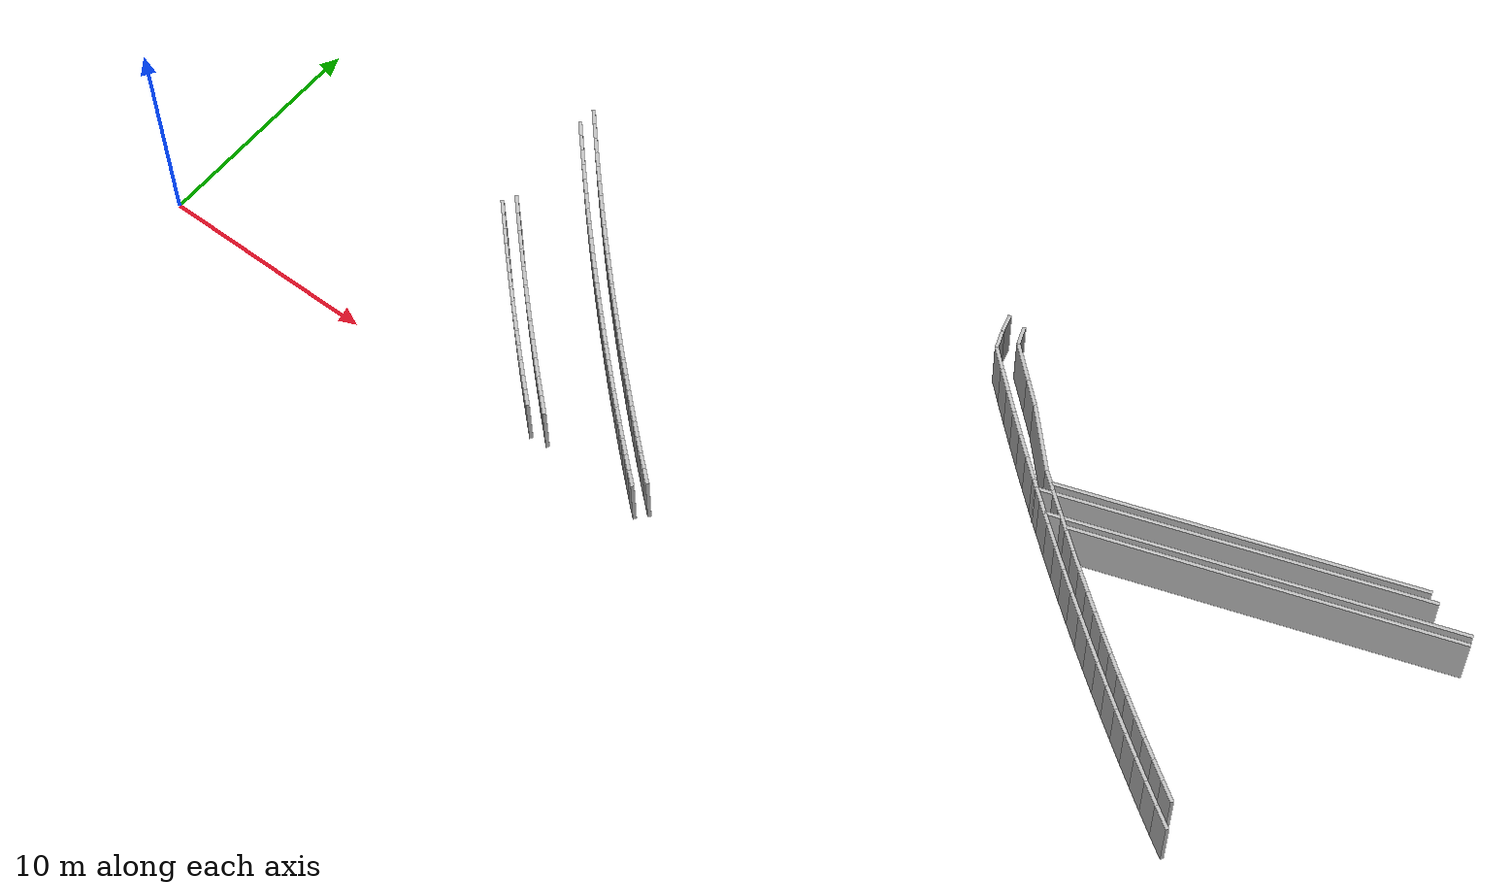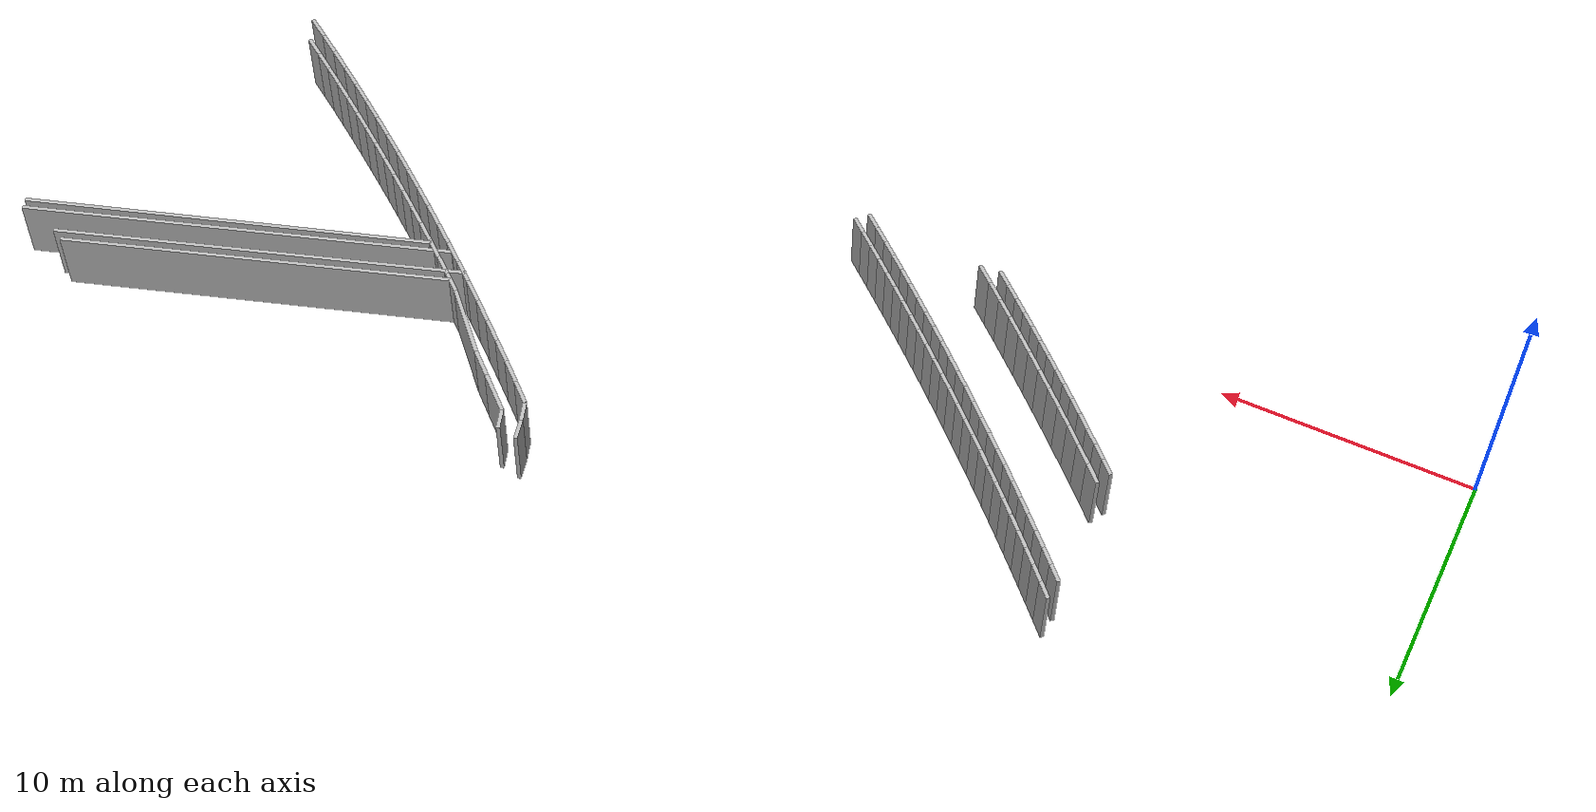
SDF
<sdf version="1.6">
 <model name="sps_0201">
  <static>1</static>
  <allow_auto_disable>0</allow_auto_disable>
  <link name="Wall1785">
   <collision name="collision"><geometry><box><size>3.11157 0.15 2.5</size></box></geometry></collision>
   <visual name="visual">
    <geometry><box><size>3.11157 0.15 2.5</size></box></geometry>
    <transparency>0.0</transparency>
   </visual>
   <pose>36.4737 11.5634 1.25 0 0 -0.795454</pose>
  </link>
  <link name="Wall2507">
   <collision name="collision"><geometry><box><size>1.78191 0.15 2.5</size></box></geometry></collision>
   <visual name="visual">
    <geometry><box><size>1.78191 0.15 2.5</size></box></geometry>
    <transparency>0.0</transparency>
   </visual>
   <pose>33.8 14.0663 1.25 0 0 -0.720717</pose>
  </link>
  <link name="Wall2508">
   <collision name="collision"><geometry><box><size>1.21813 0.15 2.5</size></box></geometry></collision>
   <visual name="visual">
    <geometry><box><size>1.21813 0.15 2.5</size></box></geometry>
    <transparency>0.0</transparency>
   </visual>
   <pose>34.9271 13.0765 1.25 0 0 -0.720717</pose>
  </link>
  <link name="Wall6502">
   <collision name="collision"><geometry><box><size>0.733 0.15 2.5</size></box></geometry></collision>
   <visual name="visual">
    <geometry><box><size>0.733 0.15 2.5</size></box></geometry>
    <transparency>0.0</transparency>
   </visual>
   <pose>12.1887 7.03181 1.25 0 0 -0.796055</pose>
  </link>
  <link name="Wall6503">
   <collision name="collision"><geometry><box><size>0.733276 0.15 2.5</size></box></geometry></collision>
   <visual name="visual">
    <geometry><box><size>0.733276 0.15 2.5</size></box></geometry>
    <transparency>0.0</transparency>
   </visual>
   <pose>12.7026 6.50902 1.25 0 0 -0.791755</pose>
  </link>
  <link name="Wall6504">
   <collision name="collision"><geometry><box><size>0.733046 0.15 2.5</size></box></geometry></collision>
   <visual name="visual">
    <geometry><box><size>0.733046 0.15 2.5</size></box></geometry>
    <transparency>0.0</transparency>
   </visual>
   <pose>13.219 5.98851 1.25 0 0 -0.787106</pose>
  </link>
  <link name="Wall6505">
   <collision name="collision"><geometry><box><size>0.733134 0.15 2.5</size></box></geometry></collision>
   <visual name="visual">
    <geometry><box><size>0.733134 0.15 2.5</size></box></geometry>
    <transparency>0.0</transparency>
   </visual>
   <pose>13.7376 5.47038 1.25 0 0 -0.782749</pose>
  </link>
  <link name="Wall6506">
   <collision name="collision"><geometry><box><size>0.733151 0.15 2.5</size></box></geometry></collision>
   <visual name="visual">
    <geometry><box><size>0.733151 0.15 2.5</size></box></geometry>
    <transparency>0.0</transparency>
   </visual>
   <pose>14.2586 4.95457 1.25 0 0 -0.77804</pose>
  </link>
  <link name="Wall6507">
   <collision name="collision"><geometry><box><size>0.733009 0.15 2.5</size></box></geometry></collision>
   <visual name="visual">
    <geometry><box><size>0.733009 0.15 2.5</size></box></geometry>
    <transparency>0.0</transparency>
   </visual>
   <pose>14.7819 4.44118 1.25 0 0 -0.773681</pose>
  </link>
  <link name="Wall6508">
   <collision name="collision"><geometry><box><size>0.733233 0.15 2.5</size></box></geometry></collision>
   <visual name="visual">
    <geometry><box><size>0.733233 0.15 2.5</size></box></geometry>
    <transparency>0.0</transparency>
   </visual>
   <pose>15.3075 3.93019 1.25 0 0 -0.76874</pose>
  </link>
  <link name="Wall6509">
   <collision name="collision"><geometry><box><size>0.73329 0.15 2.5</size></box></geometry></collision>
   <visual name="visual">
    <geometry><box><size>0.73329 0.15 2.5</size></box></geometry>
    <transparency>0.0</transparency>
   </visual>
   <pose>15.8357 3.42149 1.25 0 0 -0.764621</pose>
  </link>
  <link name="Wall6510">
   <collision name="collision"><geometry><box><size>0.733111 0.15 2.5</size></box></geometry></collision>
   <visual name="visual">
    <geometry><box><size>0.733111 0.15 2.5</size></box></geometry>
    <transparency>0.0</transparency>
   </visual>
   <pose>16.366 2.91518 1.25 0 0 -0.759905</pose>
  </link>
  <link name="Wall6511">
   <collision name="collision"><geometry><box><size>0.733118 0.15 2.5</size></box></geometry></collision>
   <visual name="visual">
    <geometry><box><size>0.733118 0.15 2.5</size></box></geometry>
    <transparency>0.0</transparency>
   </visual>
   <pose>16.8986 2.41139 1.25 0 0 -0.755311</pose>
  </link>
  <link name="Wall6512">
   <collision name="collision"><geometry><box><size>0.733179 0.15 2.5</size></box></geometry></collision>
   <visual name="visual">
    <geometry><box><size>0.733179 0.15 2.5</size></box></geometry>
    <transparency>0.0</transparency>
   </visual>
   <pose>17.4334 1.90999 1.25 0 0 -0.750897</pose>
  </link>
  <link name="Wall6513">
   <collision name="collision"><geometry><box><size>0.732961 0.15 2.5</size></box></geometry></collision>
   <visual name="visual">
    <geometry><box><size>0.732961 0.15 2.5</size></box></geometry>
    <transparency>0.0</transparency>
   </visual>
   <pose>17.9705 1.41109 1.25 0 0 -0.746173</pose>
  </link>
  <link name="Wall6514">
   <collision name="collision"><geometry><box><size>0.733142 0.15 2.5</size></box></geometry></collision>
   <visual name="visual">
    <geometry><box><size>0.733142 0.15 2.5</size></box></geometry>
    <transparency>0.0</transparency>
   </visual>
   <pose>18.5099 0.914687 1.25 0 0 -0.741646</pose>
  </link>
  <link name="Wall6515">
   <collision name="collision"><geometry><box><size>0.732985 0.15 2.5</size></box></geometry></collision>
   <visual name="visual">
    <geometry><box><size>0.732985 0.15 2.5</size></box></geometry>
    <transparency>0.0</transparency>
   </visual>
   <pose>19.0515 0.420669 1.25 0 0 -0.737333</pose>
  </link>
  <link name="Wall6563">
   <collision name="collision"><geometry><box><size>17.1673 0.15 2.5</size></box></geometry></collision>
   <visual name="visual">
    <geometry><box><size>17.1673 0.15 2.5</size></box></geometry>
    <transparency>0.0</transparency>
   </visual>
   <pose>46.8191 11.6091 1.25 0 0 -2.81138</pose>
  </link>
  <link name="Wall6564">
   <collision name="collision"><geometry><box><size>0.0600473 0.15 2.5</size></box></geometry></collision>
   <visual name="visual">
    <geometry><box><size>0.0600473 0.15 2.5</size></box></geometry>
    <transparency>0.0</transparency>
   </visual>
   <pose>38.6713 8.81477 1.25 0 0 -2.7626</pose>
  </link>
  <link name="Wall9124">
   <collision name="collision"><geometry><box><size>15.4451 0.15 2.5</size></box></geometry></collision>
   <visual name="visual">
    <geometry><box><size>15.4451 0.15 2.5</size></box></geometry>
    <transparency>0.0</transparency>
   </visual>
   <pose>45.3364 12.5762 1.25 0 0 -2.81082</pose>
  </link>
  <link name="Wall9125">
   <collision name="collision"><geometry><box><size>0.950824 0.15 2.5</size></box></geometry></collision>
   <visual name="visual">
    <geometry><box><size>0.950824 0.15 2.5</size></box></geometry>
    <transparency>0.0</transparency>
   </visual>
   <pose>37.931 10.1517 1.25 0 0 -0.684506</pose>
  </link>
  <link name="Wall9126">
   <collision name="collision"><geometry><box><size>0.950754 0.15 2.5</size></box></geometry></collision>
   <visual name="visual">
    <geometry><box><size>0.950754 0.15 2.5</size></box></geometry>
    <transparency>0.0</transparency>
   </visual>
   <pose>38.6696 9.55299 1.25 0 0 -0.677789</pose>
  </link>
  <link name="Wall9127">
   <collision name="collision"><geometry><box><size>0.950728 0.15 2.5</size></box></geometry></collision>
   <visual name="visual">
    <geometry><box><size>0.950728 0.15 2.5</size></box></geometry>
    <transparency>0.0</transparency>
   </visual>
   <pose>39.4122 8.9593 1.25 0 0 -0.671071</pose>
  </link>
  <link name="Wall9128">
   <collision name="collision"><geometry><box><size>0.950911 0.15 2.5</size></box></geometry></collision>
   <visual name="visual">
    <geometry><box><size>0.950911 0.15 2.5</size></box></geometry>
    <transparency>0.0</transparency>
   </visual>
   <pose>40.1587 8.37041 1.25 0 0 -0.664787</pose>
  </link>
  <link name="Wall9129">
   <collision name="collision"><geometry><box><size>0.950856 0.15 2.5</size></box></geometry></collision>
   <visual name="visual">
    <geometry><box><size>0.950856 0.15 2.5</size></box></geometry>
    <transparency>0.0</transparency>
   </visual>
   <pose>40.909 7.78639 1.25 0 0 -0.657919</pose>
  </link>
  <link name="Wall9130">
   <collision name="collision"><geometry><box><size>0.95097 0.15 2.5</size></box></geometry></collision>
   <visual name="visual">
    <geometry><box><size>0.95097 0.15 2.5</size></box></geometry>
    <transparency>0.0</transparency>
   </visual>
   <pose>41.6634 7.20738 1.25 0 0 -0.651434</pose>
  </link>
  <link name="Wall9131">
   <collision name="collision"><geometry><box><size>0.950855 0.15 2.5</size></box></geometry></collision>
   <visual name="visual">
    <geometry><box><size>0.950855 0.15 2.5</size></box></geometry>
    <transparency>0.0</transparency>
   </visual>
   <pose>42.4216 6.6335 1.25 0 0 -0.644361</pose>
  </link>
  <link name="Wall9132">
   <collision name="collision"><geometry><box><size>0.950675 0.15 2.5</size></box></geometry></collision>
   <visual name="visual">
    <geometry><box><size>0.950675 0.15 2.5</size></box></geometry>
    <transparency>0.0</transparency>
   </visual>
   <pose>43.1836 6.06489 1.25 0 0 -0.637774</pose>
  </link>
  <link name="Wall9133">
   <collision name="collision"><geometry><box><size>0.950828 0.15 2.5</size></box></geometry></collision>
   <visual name="visual">
    <geometry><box><size>0.950828 0.15 2.5</size></box></geometry>
    <transparency>0.0</transparency>
   </visual>
   <pose>43.9492 5.5013 1.25 0 0 -0.631279</pose>
  </link>
  <link name="Wall9134">
   <collision name="collision"><geometry><box><size>0.950821 0.15 2.5</size></box></geometry></collision>
   <visual name="visual">
    <geometry><box><size>0.950821 0.15 2.5</size></box></geometry>
    <transparency>0.0</transparency>
   </visual>
   <pose>44.7187 4.94279 1.25 0 0 -0.624384</pose>
  </link>
  <link name="Wall9135">
   <collision name="collision"><geometry><box><size>0.950844 0.15 2.5</size></box></geometry></collision>
   <visual name="visual">
    <geometry><box><size>0.950844 0.15 2.5</size></box></geometry>
    <transparency>0.0</transparency>
   </visual>
   <pose>45.4921 4.38957 1.25 0 0 -0.617578</pose>
  </link>
  <link name="Wall9136">
   <collision name="collision"><geometry><box><size>0.950702 0.15 2.5</size></box></geometry></collision>
   <visual name="visual">
    <geometry><box><size>0.950702 0.15 2.5</size></box></geometry>
    <transparency>0.0</transparency>
   </visual>
   <pose>46.2689 3.84148 1.25 0 0 -0.611241</pose>
  </link>
  <link name="Wall9137">
   <collision name="collision"><geometry><box><size>0.950757 0.15 2.5</size></box></geometry></collision>
   <visual name="visual">
    <geometry><box><size>0.950757 0.15 2.5</size></box></geometry>
    <transparency>0.0</transparency>
   </visual>
   <pose>47.0494 3.2986 1.25 0 0 -0.604241</pose>
  </link>
  <link name="Wall9138">
   <collision name="collision"><geometry><box><size>0.95098 0.15 2.5</size></box></geometry></collision>
   <visual name="visual">
    <geometry><box><size>0.95098 0.15 2.5</size></box></geometry>
    <transparency>0.0</transparency>
   </visual>
   <pose>47.8337 2.761 1.25 0 0 -0.597544</pose>
  </link>
  <link name="Wall9139">
   <collision name="collision"><geometry><box><size>0.950873 0.15 2.5</size></box></geometry></collision>
   <visual name="visual">
    <geometry><box><size>0.950873 0.15 2.5</size></box></geometry>
    <transparency>0.0</transparency>
   </visual>
   <pose>48.6216 2.22859 1.25 0 0 -0.590958</pose>
  </link>
  <link name="Wall9140">
   <collision name="collision"><geometry><box><size>0.95074 0.15 2.5</size></box></geometry></collision>
   <visual name="visual">
    <geometry><box><size>0.95074 0.15 2.5</size></box></geometry>
    <transparency>0.0</transparency>
   </visual>
   <pose>49.413 1.70149 1.25 0 0 -0.584264</pose>
  </link>
  <link name="Wall12799">
   <collision name="collision"><geometry><box><size>0.836208 0.15 2.5</size></box></geometry></collision>
   <visual name="visual">
    <geometry><box><size>0.836208 0.15 2.5</size></box></geometry>
    <transparency>0.0</transparency>
   </visual>
   <pose>32.3967 14.3728 1.25 0 -0 1.91127</pose>
  </link>
  <link name="Wall12800">
   <collision name="collision"><geometry><box><size>0.836249 0.15 2.5</size></box></geometry></collision>
   <visual name="visual">
    <geometry><box><size>0.836249 0.15 2.5</size></box></geometry>
    <transparency>0.0</transparency>
   </visual>
   <pose>32.1507 15.1713 1.25 0 -0 1.82783</pose>
  </link>
  <link name="Wall12810">
   <collision name="collision"><geometry><box><size>16.3023 0.15 2.5</size></box></geometry></collision>
   <visual name="visual">
    <geometry><box><size>16.3023 0.15 2.5</size></box></geometry>
    <transparency>0.0</transparency>
   </visual>
   <pose>45.4235 12.1714 1.25 0 0 -2.80949</pose>
  </link>
  <link name="Wall12811">
   <collision name="collision"><geometry><box><size>0.0551311 0.15 2.5</size></box></geometry></collision>
   <visual name="visual">
    <geometry><box><size>0.0551311 0.15 2.5</size></box></geometry>
    <transparency>0.0</transparency>
   </visual>
   <pose>37.692 9.50389 1.25 0 0 -2.77116</pose>
  </link>
  <link name="Wall12813">
   <collision name="collision"><geometry><box><size>16.2238 0.15 2.5</size></box></geometry></collision>
   <visual name="visual">
    <geometry><box><size>16.2238 0.15 2.5</size></box></geometry>
    <transparency>0.0</transparency>
   </visual>
   <pose>47.3884 11.4041 1.25 0 0 -2.81404</pose>
  </link>
  <link name="Wall12814">
   <collision name="collision"><geometry><box><size>0.0651843 0.15 2.5</size></box></geometry></collision>
   <visual name="visual">
    <geometry><box><size>0.0651843 0.15 2.5</size></box></geometry>
    <transparency>0.0</transparency>
   </visual>
   <pose>39.6771 8.78358 1.25 0 0 -2.8077</pose>
  </link>
  <link name="Wall19003">
   <collision name="collision"><geometry><box><size>1.06687 0.15 2.5</size></box></geometry></collision>
   <visual name="visual">
    <geometry><box><size>1.06687 0.15 2.5</size></box></geometry>
    <transparency>0.0</transparency>
   </visual>
   <pose>32.9348 13.6241 1.25 0 0 -0.727193</pose>
  </link>
  <link name="Wall19004">
   <collision name="collision"><geometry><box><size>1.06664 0.15 2.5</size></box></geometry></collision>
   <visual name="visual">
    <geometry><box><size>1.06664 0.15 2.5</size></box></geometry>
    <transparency>0.0</transparency>
   </visual>
   <pose>33.7344 12.918 1.25 0 0 -0.7196</pose>
  </link>
  <link name="Wall19005">
   <collision name="collision"><geometry><box><size>1.06677 0.15 2.5</size></box></geometry></collision>
   <visual name="visual">
    <geometry><box><size>1.06677 0.15 2.5</size></box></geometry>
    <transparency>0.0</transparency>
   </visual>
   <pose>34.5393 12.218 1.25 0 0 -0.711984</pose>
  </link>
  <link name="Wall19006">
   <collision name="collision"><geometry><box><size>1.06691 0.15 2.5</size></box></geometry></collision>
   <visual name="visual">
    <geometry><box><size>1.06691 0.15 2.5</size></box></geometry>
    <transparency>0.0</transparency>
   </visual>
   <pose>35.3494 11.5238 1.25 0 0 -0.705015</pose>
  </link>
  <link name="Wall19007">
   <collision name="collision"><geometry><box><size>1.0668 0.15 2.5</size></box></geometry></collision>
   <visual name="visual">
    <geometry><box><size>1.0668 0.15 2.5</size></box></geometry>
    <transparency>0.0</transparency>
   </visual>
   <pose>36.1645 10.8355 1.25 0 0 -0.697537</pose>
  </link>
  <link name="Wall19008">
   <collision name="collision"><geometry><box><size>1.06666 0.15 2.5</size></box></geometry></collision>
   <visual name="visual">
    <geometry><box><size>1.06666 0.15 2.5</size></box></geometry>
    <transparency>0.0</transparency>
   </visual>
   <pose>36.9847 10.1535 1.25 0 0 -0.689764</pose>
  </link>
  <link name="Wall19009">
   <collision name="collision"><geometry><box><size>1.06669 0.15 2.5</size></box></geometry></collision>
   <visual name="visual">
    <geometry><box><size>1.06669 0.15 2.5</size></box></geometry>
    <transparency>0.0</transparency>
   </visual>
   <pose>37.81 9.47771 1.25 0 0 -0.682489</pose>
  </link>
  <link name="Wall19010">
   <collision name="collision"><geometry><box><size>1.06676 0.15 2.5</size></box></geometry></collision>
   <visual name="visual">
    <geometry><box><size>1.06676 0.15 2.5</size></box></geometry>
    <transparency>0.0</transparency>
   </visual>
   <pose>38.6403 8.808 1.25 0 0 -0.675009</pose>
  </link>
  <link name="Wall19011">
   <collision name="collision"><geometry><box><size>1.06665 0.15 2.5</size></box></geometry></collision>
   <visual name="visual">
    <geometry><box><size>1.06665 0.15 2.5</size></box></geometry>
    <transparency>0.0</transparency>
   </visual>
   <pose>39.4755 8.14458 1.25 0 0 -0.667422</pose>
  </link>
  <link name="Wall19012">
   <collision name="collision"><geometry><box><size>1.06681 0.15 2.5</size></box></geometry></collision>
   <visual name="visual">
    <geometry><box><size>1.06681 0.15 2.5</size></box></geometry>
    <transparency>0.0</transparency>
   </visual>
   <pose>40.3158 7.48747 1.25 0 0 -0.659899</pose>
  </link>
  <link name="Wall19013">
   <collision name="collision"><geometry><box><size>1.06678 0.15 2.5</size></box></geometry></collision>
   <visual name="visual">
    <geometry><box><size>1.06678 0.15 2.5</size></box></geometry>
    <transparency>0.0</transparency>
   </visual>
   <pose>41.1611 6.83659 1.25 0 0 -0.652553</pose>
  </link>
  <link name="Wall19014">
   <collision name="collision"><geometry><box><size>1.06668 0.15 2.5</size></box></geometry></collision>
   <visual name="visual">
    <geometry><box><size>1.06668 0.15 2.5</size></box></geometry>
    <transparency>0.0</transparency>
   </visual>
   <pose>42.0111 6.19209 1.25 0 0 -0.644943</pose>
  </link>
  <link name="Wall19015">
   <collision name="collision"><geometry><box><size>1.06702 0.15 2.5</size></box></geometry></collision>
   <visual name="visual">
    <geometry><box><size>1.06702 0.15 2.5</size></box></geometry>
    <transparency>0.0</transparency>
   </visual>
   <pose>42.866 5.55388 1.25 0 0 -0.637632</pose>
  </link>
  <link name="Wall19016">
   <collision name="collision"><geometry><box><size>1.06675 0.15 2.5</size></box></geometry></collision>
   <visual name="visual">
    <geometry><box><size>1.06675 0.15 2.5</size></box></geometry>
    <transparency>0.0</transparency>
   </visual>
   <pose>43.7256 4.92207 1.25 0 0 -0.62994</pose>
  </link>
  <link name="Wall19017">
   <collision name="collision"><geometry><box><size>1.06672 0.15 2.5</size></box></geometry></collision>
   <visual name="visual">
    <geometry><box><size>1.06672 0.15 2.5</size></box></geometry>
    <transparency>0.0</transparency>
   </visual>
   <pose>44.59 4.29689 1.25 0 0 -0.622478</pose>
  </link>
  <link name="Wall19018">
   <collision name="collision"><geometry><box><size>1.06671 0.15 2.5</size></box></geometry></collision>
   <visual name="visual">
    <geometry><box><size>1.06671 0.15 2.5</size></box></geometry>
    <transparency>0.0</transparency>
   </visual>
   <pose>45.4589 3.67811 1.25 0 0 -0.615174</pose>
  </link>
  <link name="Wall19019">
   <collision name="collision"><geometry><box><size>1.06693 0.15 2.5</size></box></geometry></collision>
   <visual name="visual">
    <geometry><box><size>1.06693 0.15 2.5</size></box></geometry>
    <transparency>0.0</transparency>
   </visual>
   <pose>46.3325 3.06581 1.25 0 0 -0.607488</pose>
  </link>
  <link name="Wall19020">
   <collision name="collision"><geometry><box><size>1.06665 0.15 2.5</size></box></geometry></collision>
   <visual name="visual">
    <geometry><box><size>1.06665 0.15 2.5</size></box></geometry>
    <transparency>0.0</transparency>
   </visual>
   <pose>47.2107 2.46019 1.25 0 0 -0.599953</pose>
  </link>
  <link name="Wall19021">
   <collision name="collision"><geometry><box><size>1.0667 0.15 2.5</size></box></geometry></collision>
   <visual name="visual">
    <geometry><box><size>1.0667 0.15 2.5</size></box></geometry>
    <transparency>0.0</transparency>
   </visual>
   <pose>48.0933 1.86119 1.25 0 0 -0.592589</pose>
  </link>
  <link name="Wall19022">
   <collision name="collision"><geometry><box><size>1.06688 0.15 2.5</size></box></geometry></collision>
   <visual name="visual">
    <geometry><box><size>1.06688 0.15 2.5</size></box></geometry>
    <transparency>0.0</transparency>
   </visual>
   <pose>48.9804 1.26869 1.25 0 0 -0.585115</pose>
  </link>
  <link name="Wall19023">
   <collision name="collision"><geometry><box><size>1.06667 0.15 2.5</size></box></geometry></collision>
   <visual name="visual">
    <geometry><box><size>1.06667 0.15 2.5</size></box></geometry>
    <transparency>0.0</transparency>
   </visual>
   <pose>49.872 0.682998 1.25 0 0 -0.577306</pose>
  </link>
  <link name="Wall20979">
   <collision name="collision"><geometry><box><size>0.835599 0.15 2.5</size></box></geometry></collision>
   <visual name="visual">
    <geometry><box><size>0.835599 0.15 2.5</size></box></geometry>
    <transparency>0.0</transparency>
   </visual>
   <pose>32.9919 15.0484 1.25 0 -0 1.9092</pose>
  </link>
  <link name="Wall24524">
   <collision name="collision"><geometry><box><size>0.913764 0.15 2.5</size></box></geometry></collision>
   <visual name="visual">
    <geometry><box><size>0.913764 0.15 2.5</size></box></geometry>
    <transparency>0.0</transparency>
   </visual>
   <pose>12.5446 7.5266 1.25 0 0 -0.796687</pose>
  </link>
  <link name="Wall24525">
   <collision name="collision"><geometry><box><size>0.913894 0.15 2.5</size></box></geometry></collision>
   <visual name="visual">
    <geometry><box><size>0.913894 0.15 2.5</size></box></geometry>
    <transparency>0.0</transparency>
   </visual>
   <pose>13.1852 6.87489 1.25 0 0 -0.791301</pose>
  </link>
  <link name="Wall24526">
   <collision name="collision"><geometry><box><size>0.913576 0.15 2.5</size></box></geometry></collision>
   <visual name="visual">
    <geometry><box><size>0.913576 0.15 2.5</size></box></geometry>
    <transparency>0.0</transparency>
   </visual>
   <pose>13.8294 6.22688 1.25 0 0 -0.785398</pose>
  </link>
  <link name="Wall24527">
   <collision name="collision"><geometry><box><size>0.913763 0.15 2.5</size></box></geometry></collision>
   <visual name="visual">
    <geometry><box><size>0.913763 0.15 2.5</size></box></geometry>
    <transparency>0.0</transparency>
   </visual>
   <pose>14.4773 5.58259 1.25 0 0 -0.779919</pose>
  </link>
  <link name="Wall24528">
   <collision name="collision"><geometry><box><size>0.913764 0.15 2.5</size></box></geometry></collision>
   <visual name="visual">
    <geometry><box><size>0.913764 0.15 2.5</size></box></geometry>
    <transparency>0.0</transparency>
   </visual>
   <pose>15.1288 4.94191 1.25 0 0 -0.77411</pose>
  </link>
  <link name="Wall24529">
   <collision name="collision"><geometry><box><size>0.913704 0.15 2.5</size></box></geometry></collision>
   <visual name="visual">
    <geometry><box><size>0.913704 0.15 2.5</size></box></geometry>
    <transparency>0.0</transparency>
   </visual>
   <pose>15.7839 4.30492 1.25 0 0 -0.768676</pose>
  </link>
  <link name="Wall24530">
   <collision name="collision"><geometry><box><size>0.913809 0.15 2.5</size></box></geometry></collision>
   <visual name="visual">
    <geometry><box><size>0.913809 0.15 2.5</size></box></geometry>
    <transparency>0.0</transparency>
   </visual>
   <pose>16.4426 3.67161 1.25 0 0 -0.762821</pose>
  </link>
  <link name="Wall24531">
   <collision name="collision"><geometry><box><size>0.913554 0.15 2.5</size></box></geometry></collision>
   <visual name="visual">
    <geometry><box><size>0.913554 0.15 2.5</size></box></geometry>
    <transparency>0.0</transparency>
   </visual>
   <pose>17.1049 3.04219 1.25 0 0 -0.757096</pose>
  </link>
  <link name="Wall24532">
   <collision name="collision"><geometry><box><size>0.913804 0.15 2.5</size></box></geometry></collision>
   <visual name="visual">
    <geometry><box><size>0.913804 0.15 2.5</size></box></geometry>
    <transparency>0.0</transparency>
   </visual>
   <pose>17.7707 2.41658 1.25 0 0 -0.751339</pose>
  </link>
  <link name="Wall24533">
   <collision name="collision"><geometry><box><size>0.913733 0.15 2.5</size></box></geometry></collision>
   <visual name="visual">
    <geometry><box><size>0.913733 0.15 2.5</size></box></geometry>
    <transparency>0.0</transparency>
   </visual>
   <pose>18.4402 1.79469 1.25 0 0 -0.745759</pose>
  </link>
  <link name="Wall24534">
   <collision name="collision"><geometry><box><size>0.91369 0.15 2.5</size></box></geometry></collision>
   <visual name="visual">
    <geometry><box><size>0.91369 0.15 2.5</size></box></geometry>
    <transparency>0.0</transparency>
   </visual>
   <pose>19.1132 1.17659 1.25 0 0 -0.740179</pose>
  </link>
  <link name="Wall24535">
   <collision name="collision"><geometry><box><size>0.91359 0.15 2.5</size></box></geometry></collision>
   <visual name="visual">
    <geometry><box><size>0.91359 0.15 2.5</size></box></geometry>
    <transparency>0.0</transparency>
   </visual>
   <pose>19.7895 0.562301 1.25 0 0 -0.734593</pose>
  </link>
  <link name="Wall27430">
   <collision name="collision"><geometry><box><size>0.76358 0.15 2.5</size></box></geometry></collision>
   <visual name="visual">
    <geometry><box><size>0.76358 0.15 2.5</size></box></geometry>
    <transparency>0.0</transparency>
   </visual>
   <pose>12.109 12.1818 1.25 0 0 -0.819883</pose>
  </link>
  <link name="Wall27431">
   <collision name="collision"><geometry><box><size>0.763375 0.15 2.5</size></box></geometry></collision>
   <visual name="visual">
    <geometry><box><size>0.763375 0.15 2.5</size></box></geometry>
    <transparency>0.0</transparency>
   </visual>
   <pose>12.6312 11.6249 1.25 0 0 -0.815027</pose>
  </link>
  <link name="Wall27432">
   <collision name="collision"><geometry><box><size>0.763531 0.15 2.5</size></box></geometry></collision>
   <visual name="visual">
    <geometry><box><size>0.763531 0.15 2.5</size></box></geometry>
    <transparency>0.0</transparency>
   </visual>
   <pose>13.1562 11.0706 1.25 0 0 -0.810045</pose>
  </link>
  <link name="Wall27433">
   <collision name="collision"><geometry><box><size>0.763538 0.15 2.5</size></box></geometry></collision>
   <visual name="visual">
    <geometry><box><size>0.763538 0.15 2.5</size></box></geometry>
    <transparency>0.0</transparency>
   </visual>
   <pose>13.684 10.5188 1.25 0 0 -0.805409</pose>
  </link>
  <link name="Wall27434">
   <collision name="collision"><geometry><box><size>0.763473 0.15 2.5</size></box></geometry></collision>
   <visual name="visual">
    <geometry><box><size>0.763473 0.15 2.5</size></box></geometry>
    <transparency>0.0</transparency>
   </visual>
   <pose>14.2143 9.9695 1.25 0 0 -0.800549</pose>
  </link>
  <link name="Wall27435">
   <collision name="collision"><geometry><box><size>0.763427 0.15 2.5</size></box></geometry></collision>
   <visual name="visual">
    <geometry><box><size>0.763427 0.15 2.5</size></box></geometry>
    <transparency>0.0</transparency>
   </visual>
   <pose>14.7472 9.4228 1.25 0 0 -0.7958</pose>
  </link>
  <link name="Wall27436">
   <collision name="collision"><geometry><box><size>0.763699 0.15 2.5</size></box></geometry></collision>
   <visual name="visual">
    <geometry><box><size>0.763699 0.15 2.5</size></box></geometry>
    <transparency>0.0</transparency>
   </visual>
   <pose>15.2827 8.87858 1.25 0 0 -0.790993</pose>
  </link>
  <link name="Wall27437">
   <collision name="collision"><geometry><box><size>0.763515 0.15 2.5</size></box></geometry></collision>
   <visual name="visual">
    <geometry><box><size>0.763515 0.15 2.5</size></box></geometry>
    <transparency>0.0</transparency>
   </visual>
   <pose>15.821 8.33699 1.25 0 0 -0.785907</pose>
  </link>
  <link name="Wall27438">
   <collision name="collision"><geometry><box><size>0.763392 0.15 2.5</size></box></geometry></collision>
   <visual name="visual">
    <geometry><box><size>0.763392 0.15 2.5</size></box></geometry>
    <transparency>0.0</transparency>
   </visual>
   <pose>16.3618 7.79811 1.25 0 0 -0.781328</pose>
  </link>
  <link name="Wall27439">
   <collision name="collision"><geometry><box><size>0.763589 0.15 2.5</size></box></geometry></collision>
   <visual name="visual">
    <geometry><box><size>0.763589 0.15 2.5</size></box></geometry>
    <transparency>0.0</transparency>
   </visual>
   <pose>16.9052 7.26179 1.25 0 0 -0.776355</pose>
  </link>
  <link name="Wall27440">
   <collision name="collision"><geometry><box><size>0.7635 0.15 2.5</size></box></geometry></collision>
   <visual name="visual">
    <geometry><box><size>0.7635 0.15 2.5</size></box></geometry>
    <transparency>0.0</transparency>
   </visual>
   <pose>17.4513 6.72807 1.25 0 0 -0.771662</pose>
  </link>
  <link name="Wall27441">
   <collision name="collision"><geometry><box><size>0.763517 0.15 2.5</size></box></geometry></collision>
   <visual name="visual">
    <geometry><box><size>0.763517 0.15 2.5</size></box></geometry>
    <transparency>0.0</transparency>
   </visual>
   <pose>17.9998 6.19697 1.25 0 0 -0.766857</pose>
  </link>
  <link name="Wall27442">
   <collision name="collision"><geometry><box><size>0.763424 0.15 2.5</size></box></geometry></collision>
   <visual name="visual">
    <geometry><box><size>0.763424 0.15 2.5</size></box></geometry>
    <transparency>0.0</transparency>
   </visual>
   <pose>18.5509 5.66859 1.25 0 0 -0.761878</pose>
  </link>
  <link name="Wall27443">
   <collision name="collision"><geometry><box><size>0.763562 0.15 2.5</size></box></geometry></collision>
   <visual name="visual">
    <geometry><box><size>0.763562 0.15 2.5</size></box></geometry>
    <transparency>0.0</transparency>
   </visual>
   <pose>19.1045 5.1429 1.25 0 0 -0.757077</pose>
  </link>
  <link name="Wall27444">
   <collision name="collision"><geometry><box><size>0.763551 0.15 2.5</size></box></geometry></collision>
   <visual name="visual">
    <geometry><box><size>0.763551 0.15 2.5</size></box></geometry>
    <transparency>0.0</transparency>
   </visual>
   <pose>19.6608 4.61989 1.25 0 0 -0.752043</pose>
  </link>
  <link name="Wall27445">
   <collision name="collision"><geometry><box><size>0.763505 0.15 2.5</size></box></geometry></collision>
   <visual name="visual">
    <geometry><box><size>0.763505 0.15 2.5</size></box></geometry>
    <transparency>0.0</transparency>
   </visual>
   <pose>20.2197 4.09959 1.25 0 0 -0.747403</pose>
  </link>
  <link name="Wall27446">
   <collision name="collision"><geometry><box><size>0.763392 0.15 2.5</size></box></geometry></collision>
   <visual name="visual">
    <geometry><box><size>0.763392 0.15 2.5</size></box></geometry>
    <transparency>0.0</transparency>
   </visual>
   <pose>20.7808 3.58198 1.25 0 0 -0.742645</pose>
  </link>
  <link name="Wall27447">
   <collision name="collision"><geometry><box><size>0.7637 0.15 2.5</size></box></geometry></collision>
   <visual name="visual">
    <geometry><box><size>0.7637 0.15 2.5</size></box></geometry>
    <transparency>0.0</transparency>
   </visual>
   <pose>21.3447 3.06709 1.25 0 0 -0.737514</pose>
  </link>
  <link name="Wall27448">
   <collision name="collision"><geometry><box><size>0.763442 0.15 2.5</size></box></geometry></collision>
   <visual name="visual">
    <geometry><box><size>0.763442 0.15 2.5</size></box></geometry>
    <transparency>0.0</transparency>
   </visual>
   <pose>21.911 2.55492 1.25 0 0 -0.73297</pose>
  </link>
  <link name="Wall27449">
   <collision name="collision"><geometry><box><size>0.763341 0.15 2.5</size></box></geometry></collision>
   <visual name="visual">
    <geometry><box><size>0.763341 0.15 2.5</size></box></geometry>
    <transparency>0.0</transparency>
   </visual>
   <pose>22.4795 2.04552 1.25 0 0 -0.72815</pose>
  </link>
  <link name="Wall27450">
   <collision name="collision"><geometry><box><size>0.763649 0.15 2.5</size></box></geometry></collision>
   <visual name="visual">
    <geometry><box><size>0.763649 0.15 2.5</size></box></geometry>
    <transparency>0.0</transparency>
   </visual>
   <pose>23.0507 1.5388 1.25 0 0 -0.723304</pose>
  </link>
  <link name="Wall27451">
   <collision name="collision"><geometry><box><size>0.763497 0.15 2.5</size></box></geometry></collision>
   <visual name="visual">
    <geometry><box><size>0.763497 0.15 2.5</size></box></geometry>
    <transparency>0.0</transparency>
   </visual>
   <pose>23.6243 1.0348 1.25 0 0 -0.718477</pose>
  </link>
  <link name="Wall27452">
   <collision name="collision"><geometry><box><size>0.763555 0.15 2.5</size></box></geometry></collision>
   <visual name="visual">
    <geometry><box><size>0.763555 0.15 2.5</size></box></geometry>
    <transparency>0.0</transparency>
   </visual>
   <pose>24.2003 0.533706 1.25 0 0 -0.713326</pose>
  </link>
  <link name="Wall27453">
   <collision name="collision"><geometry><box><size>0.763507 0.15 2.5</size></box></geometry></collision>
   <visual name="visual">
    <geometry><box><size>0.763507 0.15 2.5</size></box></geometry>
    <transparency>0.0</transparency>
   </visual>
   <pose>24.7788 0.0353841 1.25 0 0 -0.708843</pose>
  </link>
  <link name="Wall27498">
   <collision name="collision"><geometry><box><size>0.753483 0.15 2.5</size></box></geometry></collision>
   <visual name="visual">
    <geometry><box><size>0.753483 0.15 2.5</size></box></geometry>
    <transparency>0.0</transparency>
   </visual>
   <pose>12.1619 13.006 1.25 0 0 -0.823326</pose>
  </link>
  <link name="Wall27499">
   <collision name="collision"><geometry><box><size>0.753663 0.15 2.5</size></box></geometry></collision>
   <visual name="visual">
    <geometry><box><size>0.753663 0.15 2.5</size></box></geometry>
    <transparency>0.0</transparency>
   </visual>
   <pose>12.6755 12.4545 1.25 0 0 -0.81879</pose>
  </link>
  <link name="Wall27500">
   <collision name="collision"><geometry><box><size>0.753507 0.15 2.5</size></box></geometry></collision>
   <visual name="visual">
    <geometry><box><size>0.753507 0.15 2.5</size></box></geometry>
    <transparency>0.0</transparency>
   </visual>
   <pose>13.1916 11.9054 1.25 0 0 -0.813926</pose>
  </link>
  <link name="Wall27501">
   <collision name="collision"><geometry><box><size>0.753544 0.15 2.5</size></box></geometry></collision>
   <visual name="visual">
    <geometry><box><size>0.753544 0.15 2.5</size></box></geometry>
    <transparency>0.0</transparency>
   </visual>
   <pose>13.7103 11.3588 1.25 0 0 -0.809284</pose>
  </link>
  <link name="Wall27502">
   <collision name="collision"><geometry><box><size>0.753634 0.15 2.5</size></box></geometry></collision>
   <visual name="visual">
    <geometry><box><size>0.753634 0.15 2.5</size></box></geometry>
    <transparency>0.0</transparency>
   </visual>
   <pose>14.2317 10.8147 1.25 0 0 -0.804126</pose>
  </link>
  <link name="Wall27503">
   <collision name="collision"><geometry><box><size>0.753447 0.15 2.5</size></box></geometry></collision>
   <visual name="visual">
    <geometry><box><size>0.753447 0.15 2.5</size></box></geometry>
    <transparency>0.0</transparency>
   </visual>
   <pose>14.7557 10.2732 1.25 0 0 -0.79949</pose>
  </link>
  <link name="Wall27504">
   <collision name="collision"><geometry><box><size>0.753492 0.15 2.5</size></box></geometry></collision>
   <visual name="visual">
    <geometry><box><size>0.753492 0.15 2.5</size></box></geometry>
    <transparency>0.0</transparency>
   </visual>
   <pose>15.2822 9.73418 1.25 0 0 -0.794792</pose>
  </link>
  <link name="Wall27505">
   <collision name="collision"><geometry><box><size>0.75364 0.15 2.5</size></box></geometry></collision>
   <visual name="visual">
    <geometry><box><size>0.75364 0.15 2.5</size></box></geometry>
    <transparency>0.0</transparency>
   </visual>
   <pose>15.8112 9.19759 1.25 0 0 -0.790094</pose>
  </link>
  <link name="Wall27506">
   <collision name="collision"><geometry><box><size>0.753373 0.15 2.5</size></box></geometry></collision>
   <visual name="visual">
    <geometry><box><size>0.753373 0.15 2.5</size></box></geometry>
    <transparency>0.0</transparency>
   </visual>
   <pose>16.3429 8.66359 1.25 0 0 -0.785169</pose>
  </link>
  <link name="Wall27507">
   <collision name="collision"><geometry><box><size>0.753641 0.15 2.5</size></box></geometry></collision>
   <visual name="visual">
    <geometry><box><size>0.753641 0.15 2.5</size></box></geometry>
    <transparency>0.0</transparency>
   </visual>
   <pose>16.8771 8.13219 1.25 0 0 -0.780359</pose>
  </link>
  <link name="Wall27508">
   <collision name="collision"><geometry><box><size>0.753538 0.15 2.5</size></box></geometry></collision>
   <visual name="visual">
    <geometry><box><size>0.753538 0.15 2.5</size></box></geometry>
    <transparency>0.0</transparency>
   </visual>
   <pose>17.4139 7.60329 1.25 0 0 -0.775604</pose>
  </link>
  <link name="Wall27509">
   <collision name="collision"><geometry><box><size>0.753582 0.15 2.5</size></box></geometry></collision>
   <visual name="visual">
    <geometry><box><size>0.753582 0.15 2.5</size></box></geometry>
    <transparency>0.0</transparency>
   </visual>
   <pose>17.9532 7.07698 1.25 0 0 -0.770794</pose>
  </link>
  <link name="Wall27510">
   <collision name="collision"><geometry><box><size>0.753646 0.15 2.5</size></box></geometry></collision>
   <visual name="visual">
    <geometry><box><size>0.753646 0.15 2.5</size></box></geometry>
    <transparency>0.0</transparency>
   </visual>
   <pose>18.4951 6.55327 1.25 0 0 -0.765869</pose>
  </link>
  <link name="Wall27511">
   <collision name="collision"><geometry><box><size>0.7535 0.15 2.5</size></box></geometry></collision>
   <visual name="visual">
    <geometry><box><size>0.7535 0.15 2.5</size></box></geometry>
    <transparency>0.0</transparency>
   </visual>
   <pose>19.0394 6.03209 1.25 0 0 -0.761569</pose>
  </link>
  <link name="Wall27512">
   <collision name="collision"><geometry><box><size>0.753558 0.15 2.5</size></box></geometry></collision>
   <visual name="visual">
    <geometry><box><size>0.753558 0.15 2.5</size></box></geometry>
    <transparency>0.0</transparency>
   </visual>
   <pose>19.5861 5.5135 1.25 0 0 -0.756471</pose>
  </link>
  <link name="Wall27513">
   <collision name="collision"><geometry><box><size>0.75363 0.15 2.5</size></box></geometry></collision>
   <visual name="visual">
    <geometry><box><size>0.75363 0.15 2.5</size></box></geometry>
    <transparency>0.0</transparency>
   </visual>
   <pose>20.1354 4.9976 1.25 0 0 -0.751604</pose>
  </link>
  <link name="Wall27514">
   <collision name="collision"><geometry><box><size>0.753503 0.15 2.5</size></box></geometry></collision>
   <visual name="visual">
    <geometry><box><size>0.753503 0.15 2.5</size></box></geometry>
    <transparency>0.0</transparency>
   </visual>
   <pose>20.6872 4.48439 1.25 0 0 -0.746784</pose>
  </link>
  <link name="Wall27515">
   <collision name="collision"><geometry><box><size>0.753479 0.15 2.5</size></box></geometry></collision>
   <visual name="visual">
    <geometry><box><size>0.753479 0.15 2.5</size></box></geometry>
    <transparency>0.0</transparency>
   </visual>
   <pose>21.2414 3.97389 1.25 0 0 -0.741967</pose>
  </link>
  <link name="Wall27516">
   <collision name="collision"><geometry><box><size>0.753509 0.15 2.5</size></box></geometry></collision>
   <visual name="visual">
    <geometry><box><size>0.753509 0.15 2.5</size></box></geometry>
    <transparency>0.0</transparency>
   </visual>
   <pose>21.798 3.46602 1.25 0 0 -0.737325</pose>
  </link>
  <link name="Wall27517">
   <collision name="collision"><geometry><box><size>0.753556 0.15 2.5</size></box></geometry></collision>
   <visual name="visual">
    <geometry><box><size>0.753556 0.15 2.5</size></box></geometry>
    <transparency>0.0</transparency>
   </visual>
   <pose>22.357 2.96071 1.25 0 0 -0.732683</pose>
  </link>
  <link name="Wall27518">
   <collision name="collision"><geometry><box><size>0.753502 0.15 2.5</size></box></geometry></collision>
   <visual name="visual">
    <geometry><box><size>0.753502 0.15 2.5</size></box></geometry>
    <transparency>0.0</transparency>
   </visual>
   <pose>22.9184 2.45808 1.25 0 0 -0.727746</pose>
  </link>
  <link name="Wall27519">
   <collision name="collision"><geometry><box><size>0.75368 0.15 2.5</size></box></geometry></collision>
   <visual name="visual">
    <geometry><box><size>0.75368 0.15 2.5</size></box></geometry>
    <transparency>0.0</transparency>
   </visual>
   <pose>23.4823 1.95817 1.25 0 0 -0.722883</pose>
  </link>
  <link name="Wall27520">
   <collision name="collision"><geometry><box><size>0.753478 0.15 2.5</size></box></geometry></collision>
   <visual name="visual">
    <geometry><box><size>0.753478 0.15 2.5</size></box></geometry>
    <transparency>0.0</transparency>
   </visual>
   <pose>24.0485 1.46098 1.25 0 0 -0.718159</pose>
  </link>
  <link name="Wall27521">
   <collision name="collision"><geometry><box><size>0.753638 0.15 2.5</size></box></geometry></collision>
   <visual name="visual">
    <geometry><box><size>0.753638 0.15 2.5</size></box></geometry>
    <transparency>0.0</transparency>
   </visual>
   <pose>24.6171 0.966475 1.25 0 0 -0.713466</pose>
  </link>
  <link name="Wall27522">
   <collision name="collision"><geometry><box><size>0.753431 0.15 2.5</size></box></geometry></collision>
   <visual name="visual">
    <geometry><box><size>0.753431 0.15 2.5</size></box></geometry>
    <transparency>0.0</transparency>
   </visual>
   <pose>25.1881 0.474685 1.25 0 0 -0.708679</pose>
  </link>
 </model>
</sdf>
